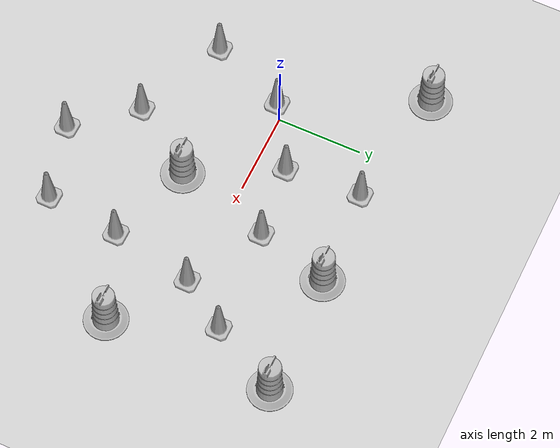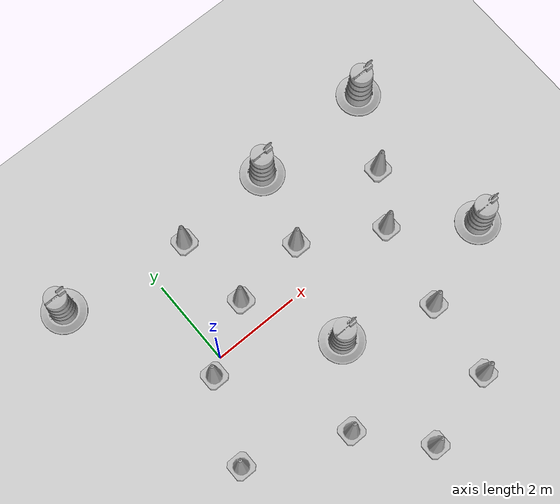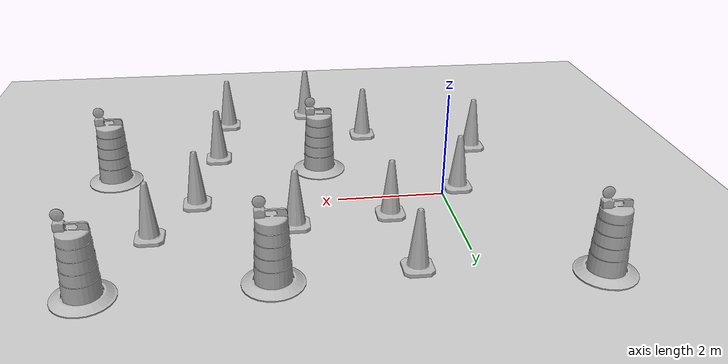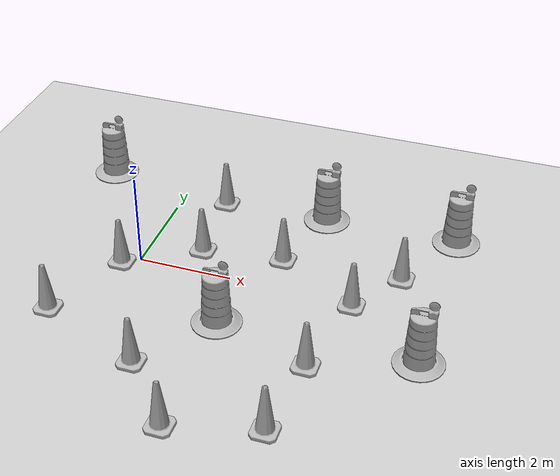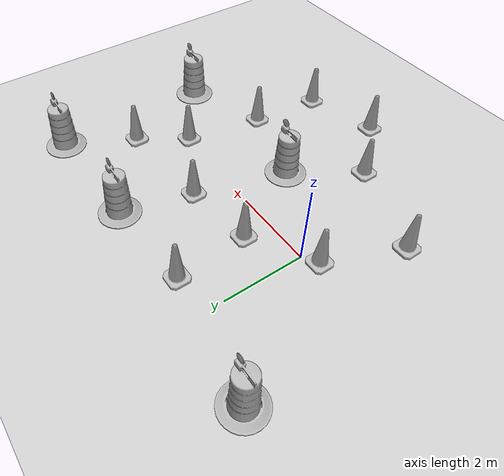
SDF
<sdf version="1.7">
 <world name="default">
  <light name="sun" type="directional">
   <pose>0 0 10 0 -0 0</pose>
   <diffuse>0.8 0.8 0.8 1</diffuse>
   <specular>0.2 0.2 0.2 1</specular>
   <attenuation>
    <range>1000</range>
    <constant>0.9</constant>
    <linear>0.01</linear>
    <quadratic>0.001</quadratic>
   </attenuation>
   <direction>-0.5 0.1 -0.9</direction>
   <spot><inner_angle>0</inner_angle><outer_angle>0</outer_angle><falloff>0</falloff></spot>
  </light>
  <model name="ground_plane">
   <static>1</static>
   <link name="link">
    <collision name="collision">
     <geometry><plane><normal>0 0 1</normal><size>100 100</size></plane></geometry>
     <surface>
      <contact><collide_bitmask>65535</collide_bitmask></contact>
      <friction><ode><mu>100</mu><mu2>50</mu2></ode></friction>
     </surface>
    </collision>
    <visual name="visual">
     <cast_shadows>0</cast_shadows>
     <geometry><plane><normal>0 0 1</normal><size>100 100</size></plane></geometry>
     <material>
      <script><uri>file://media/materials/scripts/gazebo.material</uri><name>Gazebo/Grey</name></script>
     </material>
    </visual>
   </link>
  </model>
  <gravity>0 0 -9.8</gravity>
  <magnetic_field>6e-06 2.3e-05 -4.2e-05</magnetic_field>
  <atmosphere type="adiabatic"/>
  <physics type="ode">
   <max_step_size>0.001</max_step_size>
   <real_time_factor>1</real_time_factor>
   <real_time_update_rate>1000</real_time_update_rate>
  </physics>
  <scene><ambient>0.4 0.4 0.4 1</ambient><background>0.7 0.7 0.7 1</background><shadows>1</shadows></scene>
  <audio><device>default</device></audio>
  <spherical_coordinates>
   <surface_model>EARTH_WGS84</surface_model>
   <latitude_deg>0</latitude_deg>
   <longitude_deg>0</longitude_deg>
   <elevation>0</elevation>
   <heading_deg>0</heading_deg>
  </spherical_coordinates>
  <model name="Construction Cone">
   <link name="link">
    <collision name="collision">
     <geometry>
      <mesh><scale>10 10 10</scale><uri>model://construction_cone/meshes/construction_cone.dae</uri></mesh>
     </geometry>
    </collision>
    <visual name="visual">
     <geometry>
      <mesh><scale>10 10 10</scale><uri>model://construction_cone/meshes/construction_cone.dae</uri></mesh>
     </geometry>
    </visual>
    <inertial>
     <inertia><ixx>1</ixx><ixy>0</ixy><ixz>0</ixz><iyy>1</iyy><iyz>0</iyz><izz>1</izz></inertia>
     <mass>1</mass>
    </inertial>
   </link>
   <pose>1.1364 0.685822 -0 0 -0 0</pose>
  </model>
  <model name="Construction Barrel">
   <link name="link">
    <inertial>
     <pose>0 0 0.4 0 -0 0</pose>
     <mass>500</mass>
     <inertia><ixx>51.2096</ixx><iyy>51.2096</iyy><izz>25</izz><ixy>0</ixy><ixz>0</ixz><iyz>0</iyz></inertia>
    </inertial>
    <collision name="collision">
     <geometry><mesh><uri>model://construction_barrel/meshes/construction_barrel.dae</uri></mesh></geometry>
    </collision>
    <visual name="visual">
     <geometry><mesh><uri>model://construction_barrel/meshes/construction_barrel.dae</uri></mesh></geometry>
    </visual>
   </link>
   <pose>2.22688 -1.37212 -2e-06 1e-06 8e-06 -2.5e-05</pose>
  </model>
  <model name="Construction Cone_0">
   <link name="link">
    <collision name="collision">
     <geometry>
      <mesh><scale>10 10 10</scale><uri>model://construction_cone/meshes/construction_cone.dae</uri></mesh>
     </geometry>
    </collision>
    <visual name="visual">
     <geometry>
      <mesh><scale>10 10 10</scale><uri>model://construction_cone/meshes/construction_cone.dae</uri></mesh>
     </geometry>
    </visual>
    <inertial>
     <inertia><ixx>1</ixx><ixy>0</ixy><ixz>0</ixz><iyy>1</iyy><iyz>0</iyz><izz>1</izz></inertia>
     <mass>1</mass>
    </inertial>
   </link>
   <pose>2.86041 0.898779 -0 0 -0 0</pose>
  </model>
  <model name="Construction Cone_1">
   <link name="link">
    <collision name="collision">
     <geometry>
      <mesh><scale>10 10 10</scale><uri>model://construction_cone/meshes/construction_cone.dae</uri></mesh>
     </geometry>
    </collision>
    <visual name="visual">
     <geometry>
      <mesh><scale>10 10 10</scale><uri>model://construction_cone/meshes/construction_cone.dae</uri></mesh>
     </geometry>
    </visual>
    <inertial>
     <inertia><ixx>1</ixx><ixy>0</ixy><ixz>0</ixz><iyy>1</iyy><iyz>0</iyz><izz>1</izz></inertia>
     <mass>1</mass>
    </inertial>
   </link>
   <pose>4.61181 -0.076707 -0 0 -1e-06 0</pose>
  </model>
  <model name="Construction Cone_2">
   <link name="link">
    <collision name="collision">
     <geometry>
      <mesh><scale>10 10 10</scale><uri>model://construction_cone/meshes/construction_cone.dae</uri></mesh>
     </geometry>
    </collision>
    <visual name="visual">
     <geometry>
      <mesh><scale>10 10 10</scale><uri>model://construction_cone/meshes/construction_cone.dae</uri></mesh>
     </geometry>
    </visual>
    <inertial>
     <inertia><ixx>1</ixx><ixy>0</ixy><ixz>0</ixz><iyy>1</iyy><iyz>0</iyz><izz>1</izz></inertia>
     <mass>1</mass>
    </inertial>
   </link>
   <pose>5.3666 1.06093 -0 0 -1e-06 0</pose>
  </model>
  <model name="Construction Barrel_0">
   <link name="link">
    <inertial>
     <pose>0 0 0.4 0 -0 0</pose>
     <mass>500</mass>
     <inertia><ixx>51.2096</ixx><iyy>51.2096</iyy><izz>25</izz><ixy>0</ixy><ixz>0</ixz><iyz>0</iyz></inertia>
    </inertial>
    <collision name="collision">
     <geometry><mesh><uri>model://construction_barrel/meshes/construction_barrel.dae</uri></mesh></geometry>
    </collision>
    <visual name="visual">
     <geometry><mesh><uri>model://construction_barrel/meshes/construction_barrel.dae</uri></mesh></geometry>
    </visual>
   </link>
   <pose>3.32392 2.61864 -2e-06 1e-06 8e-06 -2e-05</pose>
  </model>
  <model name="Construction Barrel_1">
   <link name="link">
    <inertial>
     <pose>0 0 0.4 0 -0 0</pose>
     <mass>500</mass>
     <inertia><ixx>51.2096</ixx><iyy>51.2096</iyy><izz>25</izz><ixy>0</ixy><ixz>0</ixz><iyz>0</iyz></inertia>
    </inertial>
    <collision name="collision">
     <geometry><mesh><uri>model://construction_barrel/meshes/construction_barrel.dae</uri></mesh></geometry>
    </collision>
    <visual name="visual">
     <geometry><mesh><uri>model://construction_barrel/meshes/construction_barrel.dae</uri></mesh></geometry>
    </visual>
   </link>
   <pose>6.19896 2.69055 -1e-06 -1e-06 -0 -1.9e-05</pose>
  </model>
  <model name="Construction Cone_3">
   <link name="link">
    <collision name="collision">
     <geometry>
      <mesh><scale>10 10 10</scale><uri>model://construction_cone/meshes/construction_cone.dae</uri></mesh>
     </geometry>
    </collision>
    <visual name="visual">
     <geometry>
      <mesh><scale>10 10 10</scale><uri>model://construction_cone/meshes/construction_cone.dae</uri></mesh>
     </geometry>
    </visual>
    <inertial>
     <inertia><ixx>1</ixx><ixy>0</ixy><ixz>0</ixz><iyy>1</iyy><iyz>0</iyz><izz>1</izz></inertia>
     <mass>1</mass>
    </inertial>
   </link>
   <pose>-0.340791 -0.225771 -0 0 -1e-06 0</pose>
  </model>
  <model name="Construction Cone_4">
   <link name="link">
    <collision name="collision">
     <geometry>
      <mesh><scale>10 10 10</scale><uri>model://construction_cone/meshes/construction_cone.dae</uri></mesh>
     </geometry>
    </collision>
    <visual name="visual">
     <geometry>
      <mesh><scale>10 10 10</scale><uri>model://construction_cone/meshes/construction_cone.dae</uri></mesh>
     </geometry>
    </visual>
    <inertial>
     <inertia><ixx>1</ixx><ixy>0</ixy><ixz>0</ixz><iyy>1</iyy><iyz>0</iyz><izz>1</izz></inertia>
     <mass>1</mass>
    </inertial>
   </link>
   <pose>1.1221 -2.95838 -1e-05 -1e-06 0 0</pose>
  </model>
  <model name="Construction Cone_5">
   <link name="link">
    <collision name="collision">
     <geometry>
      <mesh><scale>10 10 10</scale><uri>model://construction_cone/meshes/construction_cone.dae</uri></mesh>
     </geometry>
    </collision>
    <visual name="visual">
     <geometry>
      <mesh><scale>10 10 10</scale><uri>model://construction_cone/meshes/construction_cone.dae</uri></mesh>
     </geometry>
    </visual>
    <inertial>
     <inertia><ixx>1</ixx><ixy>0</ixy><ixz>0</ixz><iyy>1</iyy><iyz>0</iyz><izz>1</izz></inertia>
     <mass>1</mass>
    </inertial>
   </link>
   <pose>4.25131 -2.03225 -0 0 -1e-06 0</pose>
  </model>
  <model name="Construction Cone_6">
   <link name="link">
    <collision name="collision">
     <geometry>
      <mesh><scale>10 10 10</scale><uri>model://construction_cone/meshes/construction_cone.dae</uri></mesh>
     </geometry>
    </collision>
    <visual name="visual">
     <geometry>
      <mesh><scale>10 10 10</scale><uri>model://construction_cone/meshes/construction_cone.dae</uri></mesh>
     </geometry>
    </visual>
    <inertial>
     <inertia><ixx>1</ixx><ixy>0</ixy><ixz>0</ixz><iyy>1</iyy><iyz>0</iyz><izz>1</izz></inertia>
     <mass>1</mass>
    </inertial>
   </link>
   <pose>-1.10247 -2.054 -0 0 -1e-06 0</pose>
  </model>
  <model name="Construction Cone_7">
   <link name="link">
    <collision name="collision">
     <geometry>
      <mesh><scale>10 10 10</scale><uri>model://construction_cone/meshes/construction_cone.dae</uri></mesh>
     </geometry>
    </collision>
    <visual name="visual">
     <geometry>
      <mesh><scale>10 10 10</scale><uri>model://construction_cone/meshes/construction_cone.dae</uri></mesh>
     </geometry>
    </visual>
    <inertial>
     <inertia><ixx>1</ixx><ixy>0</ixy><ixz>0</ixz><iyy>1</iyy><iyz>0</iyz><izz>1</izz></inertia>
     <mass>1</mass>
    </inertial>
   </link>
   <pose>2.27403 -4.29045 -1e-05 0 -0 0</pose>
  </model>
  <model name="Construction Cone_8">
   <link name="link">
    <collision name="collision">
     <geometry>
      <mesh><scale>10 10 10</scale><uri>model://construction_cone/meshes/construction_cone.dae</uri></mesh>
     </geometry>
    </collision>
    <visual name="visual">
     <geometry>
      <mesh><scale>10 10 10</scale><uri>model://construction_cone/meshes/construction_cone.dae</uri></mesh>
     </geometry>
    </visual>
    <inertial>
     <inertia><ixx>1</ixx><ixy>0</ixy><ixz>0</ixz><iyy>1</iyy><iyz>0</iyz><izz>1</izz></inertia>
     <mass>1</mass>
    </inertial>
   </link>
   <pose>4.06004 -3.81161 0 -0 -0 -0</pose>
  </model>
  <model name="Construction Barrel_2">
   <link name="link">
    <inertial>
     <pose>0 0 0.4 0 -0 0</pose>
     <mass>500</mass>
     <inertia><ixx>51.2096</ixx><iyy>51.2096</iyy><izz>25</izz><ixy>0</ixy><ixz>0</ixz><iyz>0</iyz></inertia>
    </inertial>
    <collision name="collision">
     <geometry><mesh><uri>model://construction_barrel/meshes/construction_barrel.dae</uri></mesh></geometry>
    </collision>
    <visual name="visual">
     <geometry><mesh><uri>model://construction_barrel/meshes/construction_barrel.dae</uri></mesh></geometry>
    </visual>
   </link>
   <pose>6.23177 -1.26541 -1e-06 2e-06 -1e-06 -8e-06</pose>
  </model>
  <model name="Construction Barrel_3">
   <link name="link">
    <inertial>
     <pose>0 0 0.4 0 -0 0</pose>
     <mass>500</mass>
     <inertia><ixx>51.2096</ixx><iyy>51.2096</iyy><izz>25</izz><ixy>0</ixy><ixz>0</ixz><iyz>0</iyz></inertia>
    </inertial>
    <collision name="collision">
     <geometry><mesh><uri>model://construction_barrel/meshes/construction_barrel.dae</uri></mesh></geometry>
    </collision>
    <visual name="visual">
     <geometry><mesh><uri>model://construction_barrel/meshes/construction_barrel.dae</uri></mesh></geometry>
    </visual>
   </link>
   <pose>-1.93316 2.9251 -0 0 -0 -7e-06</pose>
  </model>
  <model name="Construction Cone_9">
   <link name="link">
    <collision name="collision">
     <geometry>
      <mesh><scale>10 10 10</scale><uri>model://construction_cone/meshes/construction_cone.dae</uri></mesh>
     </geometry>
    </collision>
    <visual name="visual">
     <geometry>
      <mesh><scale>10 10 10</scale><uri>model://construction_cone/meshes/construction_cone.dae</uri></mesh>
     </geometry>
    </visual>
    <inertial>
     <inertia><ixx>1</ixx><ixy>0</ixy><ixz>0</ixz><iyy>1</iyy><iyz>0</iyz><izz>1</izz></inertia>
     <mass>1</mass>
    </inertial>
   </link>
   <pose>1.01238 2.4822 -0 0 -1e-06 0</pose>
  </model>
 </world>
</sdf>
